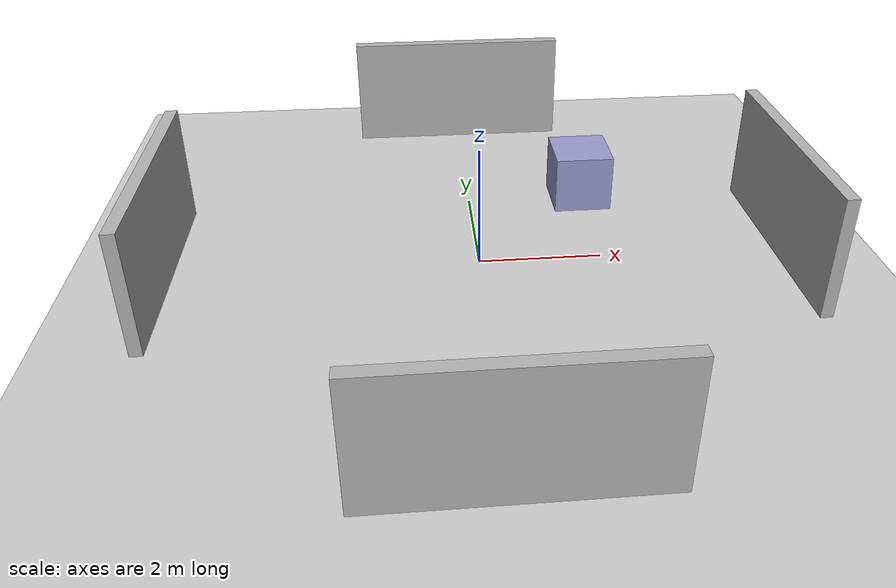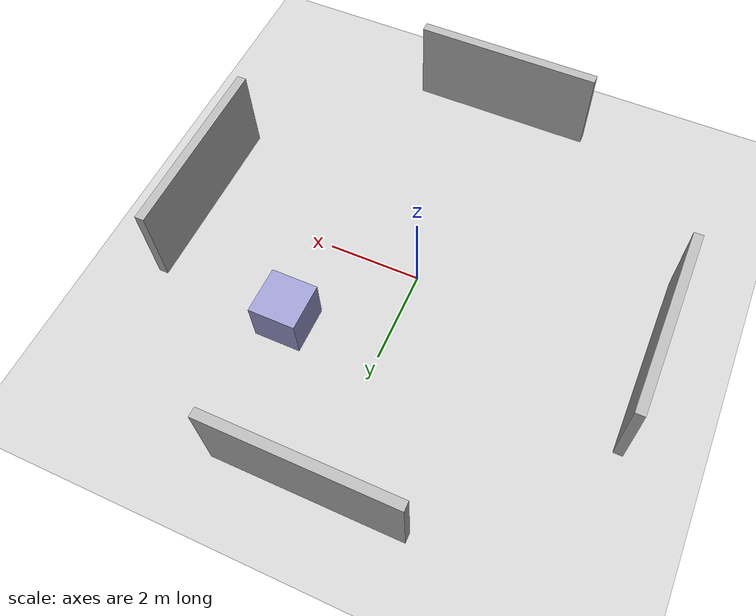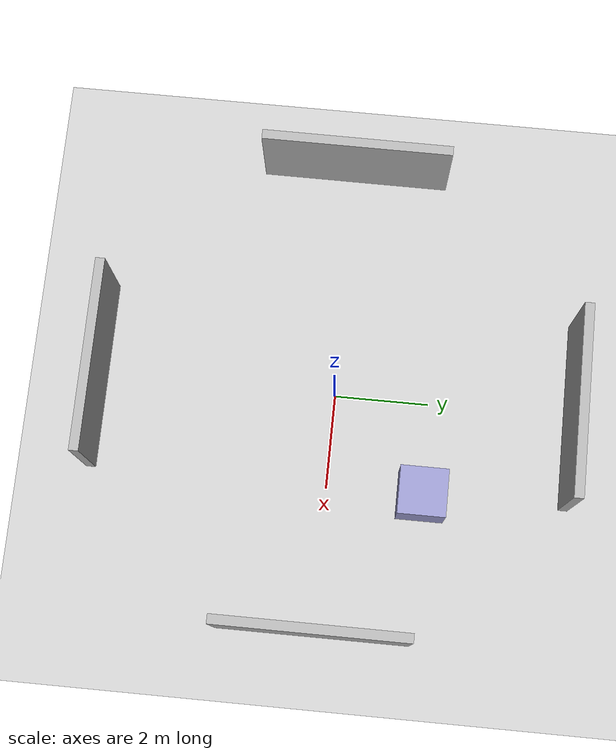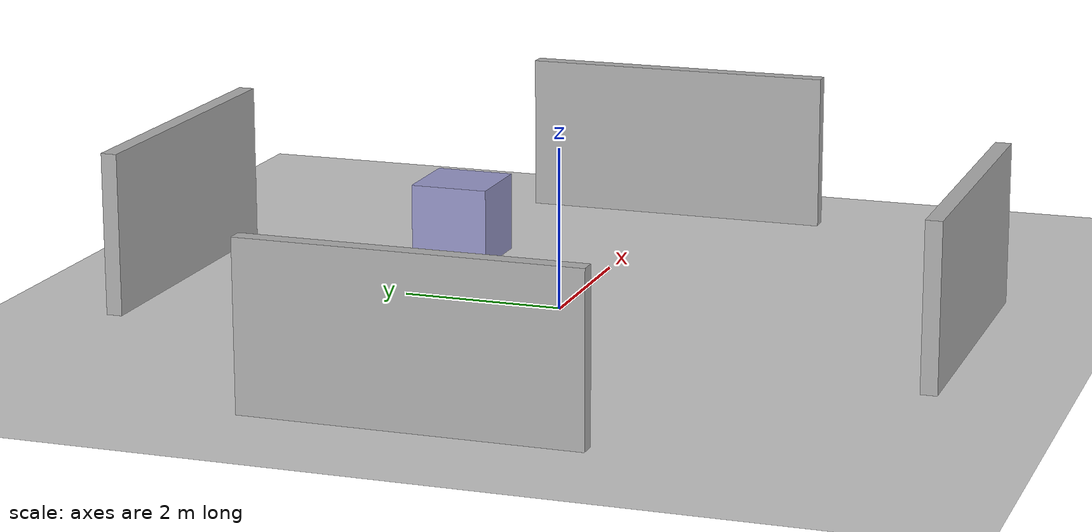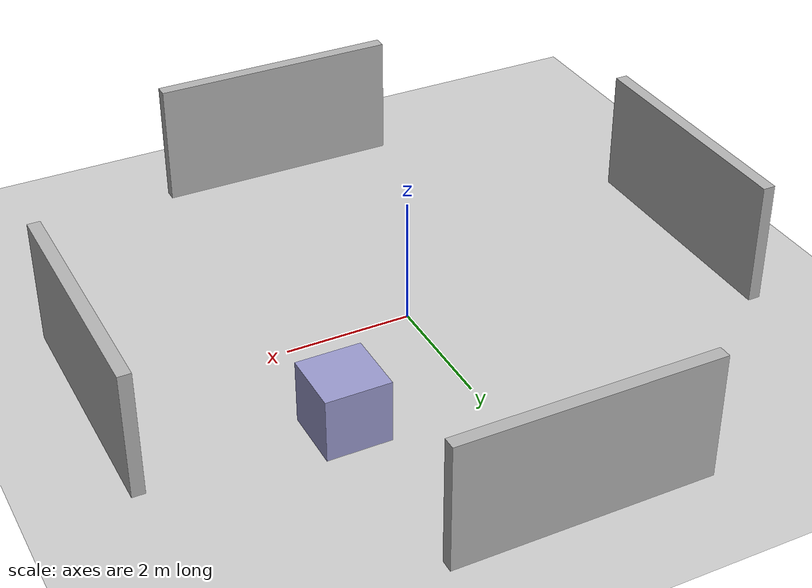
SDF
<?xml version="1.0" ?>
<sdf version="1.6">
  <world name="lio_sam_world">

    <!-- Physics properties -->
    <physics name="default_physics" default="true" type="ode">
      <max_step_size>0.001</max_step_size>
      <real_time_factor>1</real_time_factor>
      <real_time_update_rate>1000</real_time_update_rate>
    </physics>

    <!-- Lighting -->
    <light name="sun" type="directional">
      <cast_shadows>true</cast_shadows>
      <pose>0 0 10 0 0 0</pose>
      <diffuse>0.8 0.8 0.8 1</diffuse>
      <specular>0.2 0.2 0.2 1</specular>
      <attenuation>
        <range>1000</range>
        <constant>0.9</constant>
        <linear>0.01</linear>
        <quadratic>0.001</quadratic>
      </attenuation>
      <direction>-0.5 0.1 -0.9</direction>
    </light>

    <!-- Ground Plane -->
    <model name="ground_plane">
      <static>true</static>
      <link name="link">
        <collision name="collision">
          <geometry>
            <plane>
              <normal>0 0 1</normal>
              <size>100 100</size>
            </plane>
          </geometry>
          <surface>
            <friction>
              <ode>
                <mu>100</mu>
                <mu2>50</mu2>
              </ode>
            </friction>
          </surface>
        </collision>
        <visual name="visual">
          <geometry>
            <plane>
              <normal>0 0 1</normal>
              <size>100 100</size>
            </plane>
          </geometry>
          <material>
            <ambient>0.8 0.8 0.8 1</ambient>
            <diffuse>0.8 0.8 0.8 1</diffuse>
            <specular>0.8 0.8 0.8 1</specular>
          </material>
        </visual>
        <pose>0 0 0 0 0 0</pose>
      </link>
    </model>

    <!-- Simple Building/Obstacles for SLAM testing -->
    <model name="wall_1">
      <static>true</static>
      <pose>5 0 1.0 0 0 0</pose>
      <link name="link">
        <collision name="collision">
          <geometry>
            <box><size>0.2 4.0 2.0</size></box>
          </geometry>
        </collision>
        <visual name="visual">
          <geometry>
            <box><size>0.2 4.0 2.0</size></box>
          </geometry>
          <material>
            <ambient>0.7 0.7 0.7 1</ambient>
            <diffuse>0.7 0.7 0.7 1</diffuse>
            <specular>0.1 0.1 0.1 1</specular>
          </material>
        </visual>
      </link>
    </model>

    <model name="wall_2">
      <static>true</static>
      <pose>0 5 1.0 0 0 1.57</pose>
      <link name="link">
        <collision name="collision">
          <geometry>
            <box><size>0.2 4.0 2.0</size></box>
          </geometry>
        </collision>
        <visual name="visual">
          <geometry>
            <box><size>0.2 4.0 2.0</size></box>
          </geometry>
          <material>
            <ambient>0.7 0.7 0.7 1</ambient>
            <diffuse>0.7 0.7 0.7 1</diffuse>
            <specular>0.1 0.1 0.1 1</specular>
          </material>
        </visual>
      </link>
    </model>

    <model name="wall_3">
      <static>true</static>
      <pose>-5 0 1.0 0 0 3.14</pose>
      <link name="link">
        <collision name="collision">
          <geometry>
            <box><size>0.2 4.0 2.0</size></box>
          </geometry>
        </collision>
        <visual name="visual">
          <geometry>
            <box><size>0.2 4.0 2.0</size></box>
          </geometry>
          <material>
            <ambient>0.7 0.7 0.7 1</ambient>
            <diffuse>0.7 0.7 0.7 1</diffuse>
            <specular>0.1 0.1 0.1 1</specular>
          </material>
        </visual>
      </link>
    </model>

    <model name="wall_4">
      <static>true</static>
      <pose>0 -5 1.0 0 0 1.57</pose>
      <link name="link">
        <collision name="collision">
          <geometry>
            <box><size>0.2 4.0 2.0</size></box>
          </geometry>
        </collision>
        <visual name="visual">
          <geometry>
            <box><size>0.2 4.0 2.0</size></box>
          </geometry>
          <material>
            <ambient>0.7 0.7 0.7 1</ambient>
            <diffuse>0.7 0.7 0.7 1</diffuse>
            <specular>0.1 0.1 0.1 1</specular>
          </material>
        </visual>
      </link>
    </model>

    <!-- Central obstacle -->
    <model name="central_obstacle">
      <static>true</static>
      <pose>2 2 0.5 0 0 0</pose>
      <link name="link">
        <collision name="collision">
          <geometry>
            <box><size>1.0 1.0 1.0</size></box>
          </geometry>
        </collision>
        <visual name="visual">
          <geometry>
            <box><size>1.0 1.0 1.0</size></box>
          </geometry>
          <material>
            <ambient>0.6 0.6 0.8 1</ambient>
            <diffuse>0.6 0.6 0.8 1</diffuse>
            <specular>0.2 0.2 0.4 1</specular>
          </material>
        </visual>
      </link>
    </model>

    <!-- ROS2 Gazebo plugins -->
    <plugin name="gazebo_ros2_control" filename="libgazebo_ros2_control.so">
      <parameters>$(find lio_sam)/config/gazebo_control.yaml</parameters>
    </plugin>

    <!-- World properties for better lighting -->
    <spherical_coordinates>
      <surface_model>EARTH_WGS84</surface_model>
      <latitude_deg>0</latitude_deg>
      <longitude_deg>0</longitude_deg>
      <elevation>0</elevation>
      <heading_deg>0</heading_deg>
    </spherical_coordinates>

    <!-- GUI camera pose -->
    <gui fullscreen='0'>
      <camera name='user_camera'>
        <pose>10 -10 8 0 0.5 2.5</pose>
        <view_controller>orbit</view_controller>
      </camera>
    </gui>

  </world>
</sdf>
